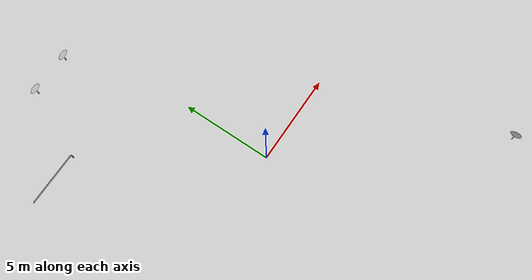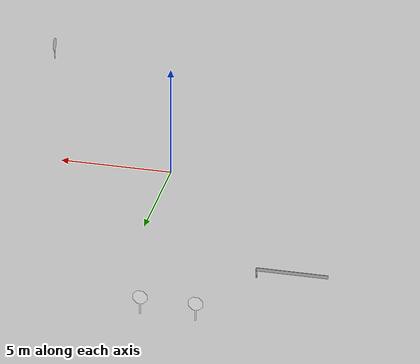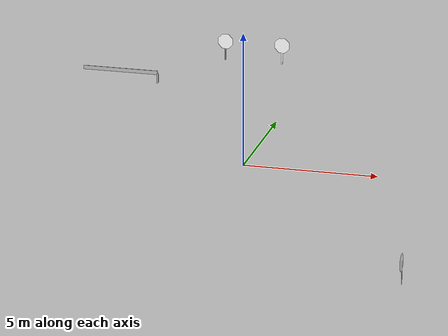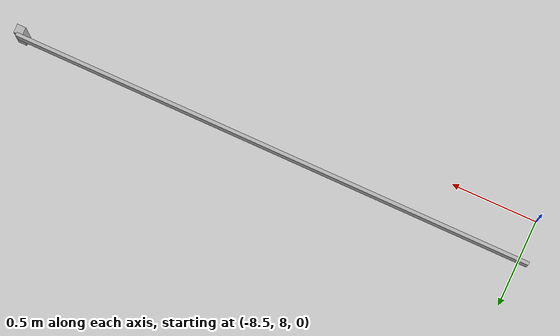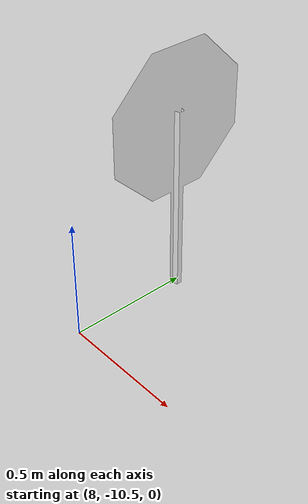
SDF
<?xml version="1.0"?>
<sdf version="1.5">
  <world name="default">

    <include>
      <uri>model://sun</uri>
    </include>

    <include>
      <pose>0 0 -.02 0 0 0</pose>
      <uri>model://ground_plane</uri>
    </include>

    <include>
      <uri>model://ground</uri>
    </include>

    <include>
      <pose>-5.54 8.24 .25 0 0 0</pose>
      <uri>model://blocking_bar</uri>
    </include>

    <model name="stop_sign_first">
      <pose>8 -10 -0.8 0 0 -1.57</pose>
      <static>true</static>
      <include>
    	<uri>model://stop_sign_resize</uri>
      </include>
    </model>

    <model name="stop_sign_second">
      <pose>-1.5 12 -0.8 0 0 0</pose>
      <static>true</static>
      <include>
    	<uri>model://stop_sign_resize</uri>
      </include>
    </model>

    <model name="stop_sign_third">
      <pose>-3.8 12 -0.8 0 0 0</pose>
      <static>true</static>
      <include>
    	<uri>model://stop_sign_resize</uri>
      </include>
    </model>
  </world>
</sdf>

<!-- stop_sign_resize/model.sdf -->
<sdf version="1.5">
  <model name="Stop Sign">
    <static>true</static>
    <link name="link">
      <collision name="collision">
        <geometry>
          <mesh>
            <uri>model://stop_sign_resize/meshes/stop_sign.dae</uri>
          </mesh>
        </geometry>
      </collision>
      <visual name="visual">
        <geometry>
          <mesh>
            <uri>model://stop_sign_resize/meshes/stop_sign.dae</uri>
          </mesh>
        </geometry>
        <material>
          <script>
            <uri>model://stop_sign_resize/materials/scripts</uri>
            <uri>model://stop_sign_resize/materials/textures</uri>
            <name>StopSign/Diffuse</name>
          </script>
        </material>
      </visual>
    </link>
  </model>
</sdf>

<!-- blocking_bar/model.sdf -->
<sdf version="1.5">

      <model name="blocking_bar">

      <link name="blocking_bar_bottom">
    	<pose>0 0 0 0 0 0</pose>
    	<collision name="blocking_bar_bottom_collision">
          <geometry>
            <box>
              <size>0.05 0.05 0.4</size>
            </box>
          </geometry>
    	</collision>
    	<visual name="blocking_bar_bottom_visual">
          <geometry>
            <box>
              <size>0.05 0.05 0.4</size>
            </box>
          </geometry>
    	</visual>
      </link>
      <link name="blocking_bar_top">
    	<pose>-1.5 0.0334 0.2 0 0 0</pose>
    	<collision name="blocking_bar_top_collision">
          <geometry>
            <box>
              <size>3.0 0.02 0.15</size>
            </box>
          </geometry>
    	</collision>
    	<visual name="blocking_bar_top_visual">
          <geometry>
            <box>
              <size>3.0 0.02 0.15</size>
            </box>
          </geometry>
          <material>
            <script>
              <name>blocking</name>
              <uri>model://blocking_bar/materials/blocking.material</uri>
            </script>
          </material>
    	</visual>
      </link>
      <joint name="blocking_bar_fixed" type="fixed">
    	<pose>0 0 0.05 0 0 0</pose>
    	<parent>world</parent>
    	<child>blocking_bar_bottom</child>
    	<axis>
          <xyz>0 0 0</xyz>
    	</axis>
      </joint>
      <joint name="blocking_bar_joint" type="revolute">
    	<parent>blocking_bar_bottom</parent>
    	<child>blocking_bar_top</child>
    	<pose>1.5 0 0 0 0 0</pose>
    	<axis>
          <xyz>0 1 0</xyz>
          <limit>
            <lower>0</lower>
            <upper>1.57</upper>
          </limit>
    	</axis>
      </joint>
      <plugin name="blockingbar" filename="/home/rosuser/catkin_ws/src/deu_car/build/libblocking.so"/>
    </model>

</sdf>
